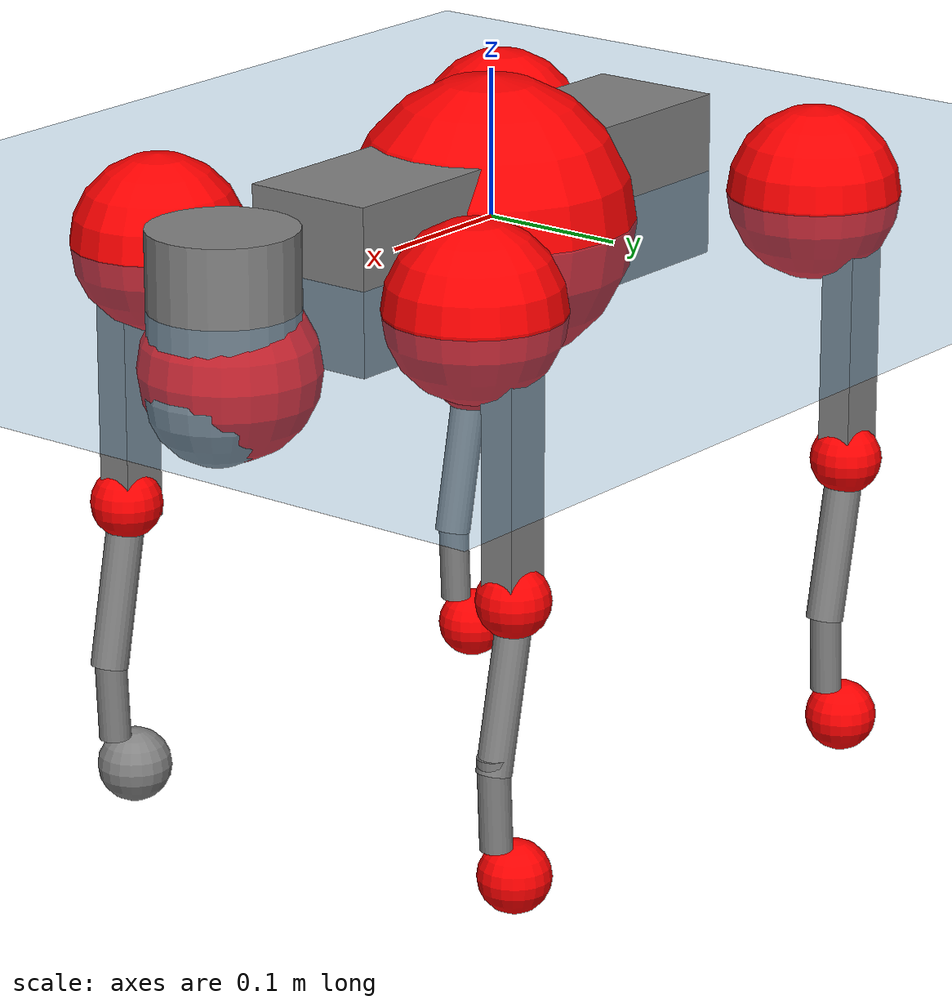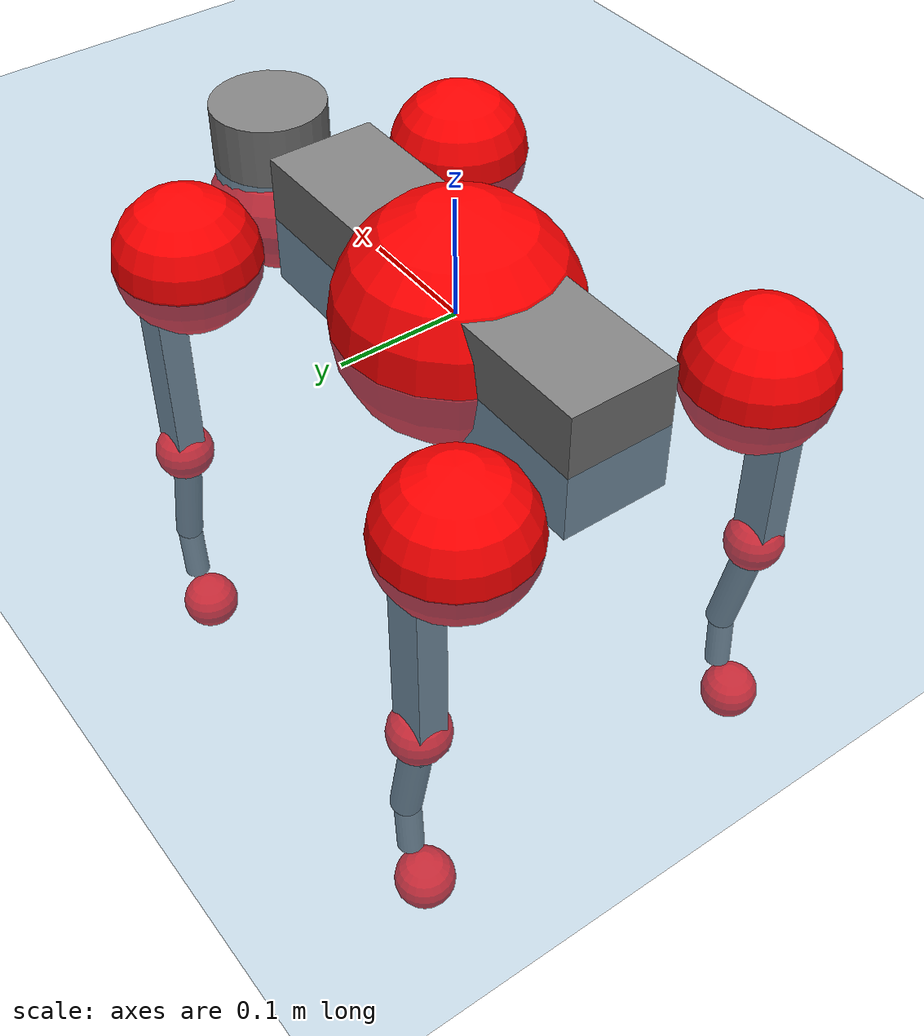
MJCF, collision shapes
<mujoco model="go2">
  <compiler angle="radian" assetdir="assets" balanceinertia="true" inertiafromgeom="false"/>

  <option timestep="0.005" density="1.2" viscosity="2e-05"/>

  <size nkey="1"/>

  <visual>
    <quality shadowsize="8192"/>
    <map shadowclip="0.5"/>
  </visual>

  <default>
    <default class="/">
      <geom contype="0" conaffinity="0" group="1" solref="-1000 -80"/>
      <site size="0.01 0.005 0.005" group="5"/>
      <general forcelimited="true" biastype="affine" gainprm="20" biasprm="0 -20 -0.5"/>
      <default class="go2">
        <joint armature="0.01" damping="0.01" frictionloss="0.2"/>
        <geom condim="1" margin="0.001"/>
        <default class="visual">
          <geom type="mesh" group="2"/>
        </default>
        <default class="collision">
          <geom group="3"/>
          <default class="foot">
            <geom size="0.022 0 0" condim="6" priority="1" friction="0.8 0.02 0.01" solimp="0.015 1 0.022"/>
          </default>
        </default>
        <default class="reward_collision_sphere">
          <geom group="5" rgba="1 0 0 1"/>
        </default>
      </default>
    </default>
  </default>

  <asset>
    <texture type="skybox" colorspace="auto" name="//unnamed_texture_0" builtin="gradient" rgb1="0.95 0.95 0.95" rgb2="0.95 0.95 0.95" width="100" height="600"/>
    <texture type="2d" colorspace="auto" name="texplane" builtin="checker" rgb1="0.345 0.575 0.748" rgb2="0.345 0.575 0.748" markrgb="1 1 1" width="512" height="512"/>
    <material name="MatPlane" class="/" texture="texplane" texuniform="true" texrepeat="2 2" specular="0.9"/>
    <material name="metal" class="/" rgba="0.9 0.95 0.95 1"/>
    <material name="black" class="/" rgba="0 0 0 1"/>
    <material name="white" class="/"/>
    <material name="gray" class="/" rgba="0.671705 0.692426 0.77427 1"/>
    <mesh name="base_0" class="/" file="base_0.obj"/>
    <mesh name="base_1" class="/" file="base_1.obj"/>
    <mesh name="base_2" class="/" file="base_2.obj"/>
    <mesh name="base_3" class="/" file="base_3.obj"/>
    <mesh name="base_4" class="/" file="base_4.obj"/>
    <mesh name="hip_0" class="/" file="hip_0.obj"/>
    <mesh name="hip_1" class="/" file="hip_1.obj"/>
    <mesh name="thigh_0" class="/" file="thigh_0.obj"/>
    <mesh name="thigh_1" class="/" file="thigh_1.obj"/>
    <mesh name="thigh_mirror_0" class="/" file="thigh_mirror_0.obj"/>
    <mesh name="thigh_mirror_1" class="/" file="thigh_mirror_1.obj"/>
    <mesh name="calf_0" class="/" file="calf_0.obj"/>
    <mesh name="calf_1" class="/" file="calf_1.obj"/>
    <mesh name="calf_mirror_0" class="/" file="calf_mirror_0.obj"/>
    <mesh name="calf_mirror_1" class="/" file="calf_mirror_1.obj"/>
    <mesh name="foot" class="/" file="foot.obj"/>
  </asset>

  <worldbody>
    <geom name="floor" class="/" size="100 100 0.125" type="plane" group="0" material="MatPlane"/>
    <light name="toplight_shadow" class="/" pos="0 0 5" dir="0.0990148 0.0990148 -0.990148" type="directional" ambient="0.04 0.04 0.04" diffuse="0.55 0.55 0.55" specular="0.12 0.12 0.12"/>
    <light name="toplight_fill" class="/" pos="0 0 5" dir="0.0990148 0.0990148 -0.990148" type="directional" castshadow="false" ambient="0.04 0.04 0.04" diffuse="0.3 0.3 0.3" specular="0.08 0.08 0.08"/>
    <body name="trunk" childclass="go2" pos="-0.000471007 -0.00254574 -0.00239209" quat="1 -5.18718e-05 -0.000893293 -0.000400586">
      <inertial pos="0.0194881 0.000710036 -0.00432783" quat="-0.00465153 0.706094 0.00173138 0.7081" mass="6.65018" diaginertia="0.071795 0.177622 0.0132291"/>
      <joint name="//unnamed_joint_0" type="free" armature="0" damping="0" frictionloss="0"/>
      <geom name="//unnamed_geom_1" class="visual" material="black" mesh="base_0"/>
      <geom name="//unnamed_geom_2" class="visual" material="black" mesh="base_1"/>
      <geom name="//unnamed_geom_3" class="visual" material="black" mesh="base_2"/>
      <geom name="//unnamed_geom_4" class="visual" material="white" mesh="base_3"/>
      <geom name="//unnamed_geom_5" class="visual" material="gray" mesh="base_4"/>
      <geom name="trunk_1" class="collision" size="0.183894 0.0457046 0.0557254" type="box"/>
      <geom name="trunk_2" class="collision" size="0.0488819 0.0439937" pos="0.263802 0 0.00880121" type="cylinder"/>
      <geom name="trunk_3" class="collision" size="0.045949" pos="0.271207 0 -0.0528073"/>
      <geom name="//unnamed_geom_9" class="reward_collision_sphere" size="0.0977639"/>
      <geom name="//unnamed_geom_10" class="reward_collision_sphere" size="0.0586583" pos="0.259174 0 -0.0396055"/>
      <site name="imu" pos="-0.0275218 0.0111309 0.0299162" size="0.00977639"/>
      <camera name="track" pos="0 -2.25435 0" quat="0.707107 0.707107 0 0" mode="trackcom"/>
      <camera name="ego_camera" pos="0.288794 0 0.0396055" quat="-0.5 -0.5 0.5 0.5"/>
      <body name="FL_hip" pos="0.176155 0.0496124 0.00300161" quat="1 -0.000133206 0.000169271 -6.07004e-05">
        <inertial pos="-0.00492502 -0.000342786 -0.00297553" quat="0.501294 0.498524 0.503283 0.496875" mass="0.647963" diaginertia="0.000611383 0.00109229 0.000267187"/>
        <joint name="FL_hip_joint" pos="0 0 0" axis="0.999953 -0.00871193 0.00426905" range="-1.02952 1.01819" armature="0.0108689" damping="0" frictionloss="0.220482"/>
        <geom name="//unnamed_geom_11" class="visual" material="metal" mesh="hip_0"/>
        <geom name="//unnamed_geom_12" class="visual" material="gray" mesh="hip_1"/>
        <geom name="//unnamed_geom_13" class="collision" size="0.0449714 0.0195528" pos="0 0.0901738 0" quat="0.707107 0.707107 0 0" type="cylinder"/>
        <geom name="//unnamed_geom_14" class="reward_collision_sphere" size="0.0586583" pos="0 0.0789021 0"/>
        <body name="FL_thigh" pos="-0.00112148 0.107622 0.00305964" quat="1 0.000489645 0.000282371 0.00022231">
          <inertial pos="-0.00302757 -0.0256989 -0.0275278" quat="0.827879 0.0890132 -0.020094 0.553434" mass="1.06373" diaginertia="0.00409991 0.0108558 0.000452116"/>
          <joint name="FL_thigh_joint" pos="0 0 0" axis="-0.012421 0.99992 -0.00219885" range="-1.60746 3.5337" armature="0.0109052" damping="0.00327351" frictionloss="0.222478"/>
          <geom name="//unnamed_geom_15" class="visual" material="metal" mesh="thigh_0"/>
          <geom name="//unnamed_geom_16" class="visual" material="gray" mesh="thigh_1"/>
          <geom name="//unnamed_geom_17" class="collision" size="0.104119 0.0119761 0.0166199" pos="0 0 -0.0937329" quat="0.707107 0 0.707107 0" type="box"/>
          <body name="FL_calf" pos="-0.000913351 0.000180805 -0.18727" quat="0.999999 -0.00112821 0.000221686 0.000712576">
            <inertial pos="0.00856924 0.00224337 -0.126684" quat="0.709777 -0.00105866 -0.0108077 0.704343" mass="0.23041" diaginertia="0.000989877 0.00276137 2.71847e-05"/>
            <joint name="FL_calf_joint" pos="0 0 0" axis="0.000326709 1 -0.000326974" stiffness="0.00114089" range="-2.70976 -0.873299" armature="0.00826338" damping="0.00610866" frictionloss="0.198182"/>
            <geom name="//unnamed_geom_18" class="visual" material="gray" mesh="calf_0"/>
            <geom name="//unnamed_geom_19" class="visual" material="black" mesh="calf_1"/>
            <geom name="FL_calf0" class="collision" size="0.0117317 0.0586583" pos="0.00740498 0 -0.0528073" quat="0.994493 0 -0.104807 0" type="cylinder"/>
            <geom name="//unnamed_geom_21" class="collision" size="0.010754 0.0317733" pos="0.0185124 0 -0.130258" quat="0.999688 0 0.0249974 0" type="cylinder"/>
            <geom name="//unnamed_geom_22" class="visual" pos="0 0 -0.187466" quat="1 0 0 0" material="black" mesh="foot"/>
            <geom name="FL_foot" class="foot" size="0.0217179" pos="-0.00185124 0 -0.187466"/>
            <geom name="//unnamed_geom_24" class="reward_collision_sphere" size="0.024441"/>
            <geom name="//unnamed_geom_25" class="reward_collision_sphere" size="0.024441" pos="-0.00185124 0 -0.187466"/>
            <site name="FL_foot" class="foot" pos="-0.00185124 0 -0.187466" size="0.00977639"/>
          </body>
        </body>
      </body>
      <body name="FR_hip" pos="0.178923 -0.0512967 0.00176487" quat="0.999999 -0.000382741 0.000472587 0.0010646">
        <inertial pos="-0.00300001 -0.00077936 -0.000635775" quat="0.49936 0.508836 0.497743 0.493941" mass="0.645887" diaginertia="0.000620393 0.00110803 0.000252642"/>
        <joint name="FR_hip_joint" pos="0 0 0" axis="0.999988 -0.00232318 0.00441437" range="-0.993049 1.05397" armature="0.00973848" damping="0.00573723" frictionloss="0.198913"/>
        <geom name="//unnamed_geom_26" class="visual" pos="0 2.15221e-09 9.23127e-08" quat="4.63268e-05 1 0 0" material="metal" mesh="hip_0"/>
        <geom name="//unnamed_geom_27" class="visual" pos="0 3.48899e-09 -2.28325e-07" quat="4.63268e-05 1 0 0" material="gray" mesh="hip_1"/>
        <geom name="//unnamed_geom_28" class="collision" size="0.0449714 0.0195528" pos="0 -0.0901738 0" quat="0.707107 0.707107 0 0" type="cylinder"/>
        <geom name="//unnamed_geom_29" class="reward_collision_sphere" size="0.0586583" pos="0 -0.0789021 0"/>
        <body name="FR_thigh" pos="-0.000435306 -0.109102 0.00136561" quat="1 -0.000257824 3.92972e-05 0.000459497">
          <inertial pos="-0.00585012 0.0251879 -0.030305" quat="0.55098 -0.0210468 0.0853361 0.829877" mass="1.04981" diaginertia="0.00393649 0.00999808 0.000439878"/>
          <joint name="FR_thigh_joint" pos="0 0 0" axis="-0.0104293 -0.999919 0.00732162" stiffness="0.00155635" range="-3.52521 1.52025" armature="0.00956668" damping="0.0114313" frictionloss="0.220798"/>
          <geom name="//unnamed_geom_30" class="visual" material="metal" mesh="thigh_mirror_0"/>
          <geom name="//unnamed_geom_31" class="visual" material="gray" mesh="thigh_mirror_1"/>
          <geom name="//unnamed_geom_32" class="collision" size="0.104119 0.0119761 0.0166199" pos="0 0 -0.0937329" quat="0.707107 0 0.707107 0" type="box"/>
          <body name="FR_calf" pos="0.00260491 -0.00198074 -0.186391" quat="1 2.28841e-05 -0.000171312 9.03279e-05">
            <inertial pos="0.00859572 0.000439583 -0.126311" quat="0.702702 -0.00491153 0.00173364 0.711466" mass="0.234813" diaginertia="0.0010573 0.00264145 2.8366e-05"/>
            <joint name="FR_calf_joint" pos="0 0 0" axis="-0.0033353 -0.999994 -0.000880649" range="0.847524 2.73558" armature="0.00928417" damping="0.0234135" frictionloss="0.207327"/>
            <geom name="//unnamed_geom_33" class="visual" material="gray" mesh="calf_mirror_0"/>
            <geom name="//unnamed_geom_34" class="visual" material="black" mesh="calf_mirror_1"/>
            <geom name="FR_calf0" class="collision" size="0.0127093 0.0586583" pos="0.00925622 0 -0.0528073" quat="0.995004 0 -0.0998334 0" type="cylinder"/>
            <geom name="//unnamed_geom_36" class="collision" size="0.010754 0.0317733" pos="0.0185124 0 -0.130258" quat="0.999688 0 0.0249974 0" type="cylinder"/>
            <geom name="//unnamed_geom_37" class="visual" pos="0 0 -0.187466" quat="1 0 0 0" material="black" mesh="foot"/>
            <geom name="FR_foot" class="foot" size="0.0252452" pos="-0.00185124 0 -0.187466"/>
            <geom name="//unnamed_geom_39" class="reward_collision_sphere" size="0.024441"/>
            <geom name="//unnamed_geom_40" class="reward_collision_sphere" size="0.024441" pos="-0.00185124 0 -0.187466"/>
            <site name="FR_foot" class="foot" pos="-0.00185124 0 -0.187466" size="0.00977639"/>
          </body>
        </body>
      </body>
      <body name="RL_hip" pos="-0.181501 0.0552514 0.00311252" quat="1 -0.00010826 0.000269335 -0.000281272">
        <inertial pos="0.00584131 0.00258735 -0.000330267" quat="0.504672 0.498508 0.496971 0.499815" mass="0.632711" diaginertia="0.000594567 0.00110306 0.000246231"/>
        <joint name="RL_hip_joint" pos="0 0 0" axis="-0.999678 -0.000716211 0.0253839" stiffness="0.0115296" range="-1.05585 1.03613" armature="0.00998306" damping="0.0133547" frictionloss="0.218325"/>
        <geom name="//unnamed_geom_41" class="visual" pos="-3.96384e-10 0 -7.77004e-08" quat="4.63268e-05 0 1 0" material="metal" mesh="hip_0"/>
        <geom name="//unnamed_geom_42" class="visual" pos="-6.42586e-10 0 -6.89092e-08" quat="4.63268e-05 0 1 0" material="gray" mesh="hip_1"/>
        <geom name="//unnamed_geom_43" class="collision" size="0.0449714 0.0195528" pos="0 0.0901738 0" quat="0.707107 0.707107 0 0" type="cylinder"/>
        <geom name="//unnamed_geom_44" class="reward_collision_sphere" size="0.0586583" pos="0 0.0789021 0"/>
        <body name="RL_thigh" pos="-0.00035782 0.110544 0.00233118" quat="1 -0.000260345 -7.69551e-05 -1.59912e-05">
          <inertial pos="-0.00281789 -0.0250554 -0.0290424" quat="0.828615 0.0799673 -0.0152227 0.553868" mass="1.05106" diaginertia="0.0041161 0.0103281 0.000474973"/>
          <joint name="RL_thigh_joint" pos="0 0 0" axis="0.00265621 0.999994 0.0022538" range="-0.517046 4.568" armature="0.00860875" damping="0.00596897" frictionloss="0.174691"/>
          <geom name="//unnamed_geom_45" class="visual" material="metal" mesh="thigh_0"/>
          <geom name="//unnamed_geom_46" class="visual" material="gray" mesh="thigh_1"/>
          <geom name="//unnamed_geom_47" class="collision" size="0.104119 0.0119761 0.0166199" pos="0 0 -0.0937329" quat="0.707107 0 0.707107 0" type="box"/>
          <body name="RL_calf" pos="0.00121113 0.000370834 -0.183955" quat="1 -0.000153889 0.000100161 -2.19961e-05">
            <inertial pos="0.00556544 -0.000241419 -0.121672" quat="0.709857 0.002406 -0.00500218 0.704324" mass="0.227402" diaginertia="0.00100948 0.00263985 2.84906e-05"/>
            <joint name="RL_calf_joint" pos="0 0 0" axis="0.00342623 0.999986 0.00403711" stiffness="0.00195756" range="-2.75148 -0.836971" armature="0.00862237" damping="0.00497912" frictionloss="0.202827"/>
            <geom name="//unnamed_geom_48" class="visual" material="gray" mesh="calf_0"/>
            <geom name="//unnamed_geom_49" class="visual" material="black" mesh="calf_1"/>
            <geom name="RL_calf0" class="collision" size="0.0127093 0.0586583" pos="0.00925622 0 -0.0528073" quat="0.995004 0 -0.0998334 0" type="cylinder"/>
            <geom name="//unnamed_geom_51" class="collision" size="0.010754 0.0317733" pos="0.0185124 0 -0.130258" quat="0.999688 0 0.0249974 0" type="cylinder"/>
            <geom name="//unnamed_geom_52" class="visual" pos="0 0 -0.187466" quat="1 0 0 0" material="black" mesh="foot"/>
            <geom name="RL_foot" class="foot" size="0.0218923" pos="-0.00185124 0 -0.187466"/>
            <geom name="//unnamed_geom_54" class="reward_collision_sphere" size="0.024441"/>
            <geom name="//unnamed_geom_55" class="reward_collision_sphere" size="0.024441" pos="-0.00185124 0 -0.187466"/>
            <site name="RL_foot" class="foot" pos="-0.00185124 0 -0.187466" size="0.00977639"/>
          </body>
        </body>
      </body>
      <body name="RR_hip" pos="-0.179773 -0.0521051 0.00209452" quat="0.999999 -0.00101781 0.00086958 0.000542099">
        <inertial pos="0.00485979 -0.000144178 -0.000573456" quat="0.496791 0.501548 0.498252 0.503382" mass="0.635686" diaginertia="0.000625825 0.00112894 0.000247351"/>
        <joint name="RR_hip_joint" pos="0 0 0" axis="-1 2.62065e-05 0.000336861" range="-1.04365 1.05234" armature="0.0101171" damping="0.00675254" frictionloss="0.180871"/>
        <geom name="//unnamed_geom_56" class="visual" pos="4.03362e-10 2.15221e-09 -1.70013e-07" quat="2.14617e-09 4.63268e-05 4.63268e-05 -1" material="metal" mesh="hip_0"/>
        <geom name="//unnamed_geom_57" class="visual" pos="6.25327e-10 3.48899e-09 1.59415e-07" quat="2.14617e-09 4.63268e-05 4.63268e-05 -1" material="gray" mesh="hip_1"/>
        <geom name="//unnamed_geom_58" class="collision" size="0.0449714 0.0195528" pos="0 -0.0901738 0" quat="0.707107 0.707107 0 0" type="cylinder"/>
        <geom name="//unnamed_geom_59" class="reward_collision_sphere" size="0.0586583" pos="0 -0.0789021 0"/>
        <body name="RR_thigh" pos="-0.000414297 -0.10933 -0.00132177" quat="0.999999 -0.000161595 0.000786142 -0.000878529">
          <inertial pos="-0.00361418 0.0225909 -0.029732" quat="0.551697 -0.0215045 0.0862388 0.829295" mass="1.01" diaginertia="0.00380379 0.0102878 0.000444537"/>
          <joint name="RR_thigh_joint" pos="0 0 0" axis="0.00193785 -0.999991 0.0038921" range="-4.55905 0.579626" armature="0.0110896" damping="0.0078295" frictionloss="0.181764"/>
          <geom name="//unnamed_geom_60" class="visual" material="metal" mesh="thigh_mirror_0"/>
          <geom name="//unnamed_geom_61" class="visual" material="gray" mesh="thigh_mirror_1"/>
          <geom name="//unnamed_geom_62" class="collision" size="0.104119 0.0119761 0.0166199" pos="0 0 -0.0937329" quat="0.707107 0 0.707107 0" type="box"/>
          <body name="RR_calf" pos="0.000607088 0.00253135 -0.187411" quat="1 -9.69074e-05 0.000200023 -7.43991e-06">
            <inertial pos="0.00530024 0.000111934 -0.121798" quat="0.703985 0.00304603 -0.00770131 0.710167" mass="0.224487" diaginertia="0.0010451 0.00257439 2.89122e-05"/>
            <joint name="RR_calf_joint" pos="0 0 0" axis="0.00215239 -0.999932 -0.0114251" range="0.885986 2.71051" armature="0.00860934" damping="0.013988" frictionloss="0.209711"/>
            <geom name="//unnamed_geom_63" class="visual" material="gray" mesh="calf_mirror_0"/>
            <geom name="//unnamed_geom_64" class="visual" material="black" mesh="calf_mirror_1"/>
            <geom name="RR_calf0" class="collision" size="0.0127093 0.0586583" pos="0.00925622 0 -0.0528073" quat="0.995004 0 -0.0998334 0" type="cylinder"/>
            <geom name="//unnamed_geom_66" class="collision" size="0.010754 0.0317733" pos="0.0185124 0 -0.130258" quat="0.999688 0 0.0249974 0" type="cylinder"/>
            <geom name="//unnamed_geom_67" class="visual" pos="0 0 -0.187466" quat="1 0 0 0" material="black" mesh="foot"/>
            <geom name="RR_foot" class="foot" size="0.0217447" pos="-0.00185124 0 -0.187466"/>
            <geom name="//unnamed_geom_69" class="reward_collision_sphere" size="0.024441"/>
            <geom name="//unnamed_geom_70" class="reward_collision_sphere" size="0.024441" pos="-0.00185124 0 -0.187466"/>
            <site name="RR_foot" class="foot" pos="-0.00185124 0 -0.187466" size="0.00977639"/>
          </body>
        </body>
      </body>
    </body>
  </worldbody>

  <contact>
    <pair class="/" geom1="floor" geom2="FL_foot" name="//unnamed_contact_0"/>
    <pair class="/" geom1="floor" geom2="FR_foot" name="//unnamed_contact_1"/>
    <pair class="/" geom1="floor" geom2="RL_foot" name="//unnamed_contact_2"/>
    <pair class="/" geom1="floor" geom2="RR_foot" name="//unnamed_contact_3"/>
  </contact>

  <actuator>
    <general name="FL_hip" class="/" joint="FL_hip_joint" forcerange="-24.0031 24.0031" gainprm="19.6565" biasprm="0 -19.6565 -0.487596"/>
    <general name="FL_thigh" class="/" joint="FL_thigh_joint" forcerange="-20.7798 20.7798" gainprm="19.6565" biasprm="0 -19.6565 -0.487596"/>
    <general name="FL_calf" class="/" joint="FL_calf_joint" forcerange="-44.912 44.912" gainprm="19.6565" biasprm="0 -19.6565 -0.487596"/>
    <general name="FR_hip" class="/" joint="FR_hip_joint" forcerange="-22.9108 22.9108" gainprm="19.6565" biasprm="0 -19.6565 -0.487596"/>
    <general name="FR_thigh" class="/" joint="FR_thigh_joint" forcerange="-23.0221 23.0221" gainprm="19.6565" biasprm="0 -19.6565 -0.487596"/>
    <general name="FR_calf" class="/" joint="FR_calf_joint" forcerange="-40.3439 40.3439" gainprm="19.6565" biasprm="0 -19.6565 -0.487596"/>
    <general name="RL_hip" class="/" joint="RL_hip_joint" forcerange="-23.6921 23.6921" gainprm="19.6565" biasprm="0 -19.6565 -0.487596"/>
    <general name="RL_thigh" class="/" joint="RL_thigh_joint" forcerange="-23.8188 23.8188" gainprm="19.6565" biasprm="0 -19.6565 -0.487596"/>
    <general name="RL_calf" class="/" joint="RL_calf_joint" forcerange="-43.0078 43.0078" gainprm="19.6565" biasprm="0 -19.6565 -0.487596"/>
    <general name="RR_hip" class="/" joint="RR_hip_joint" forcerange="-22.8744 22.8744" gainprm="19.6565" biasprm="0 -19.6565 -0.487596"/>
    <general name="RR_thigh" class="/" joint="RR_thigh_joint" forcerange="-21.5849 21.5849" gainprm="19.6565" biasprm="0 -19.6565 -0.487596"/>
    <general name="RR_calf" class="/" joint="RR_calf_joint" forcerange="-46.0721 46.0721" gainprm="19.6565" biasprm="0 -19.6565 -0.487596"/>
  </actuator>

  <sensor>
    <gyro site="imu" name="imu_angular_velocity"/>
    <velocimeter site="imu" name="imu_linear_velocity"/>
    <framelinvel objtype="site" objname="FL_foot" name="FL_foot_global_linear_velocity"/>
    <framelinvel objtype="site" objname="FR_foot" name="FR_foot_global_linear_velocity"/>
    <framelinvel objtype="site" objname="RL_foot" name="RL_foot_global_linear_velocity"/>
    <framelinvel objtype="site" objname="RR_foot" name="RR_foot_global_linear_velocity"/>
  </sensor>

  <keyframe>
    <key name="home" qpos="0 0 0.325 1 0 0 0 0.1 0.8 -1.5 -0.1 -0.8 1.5 -0.1 0.8 -1.5 0.1 -0.8 1.5"/>
  </keyframe>
</mujoco>
